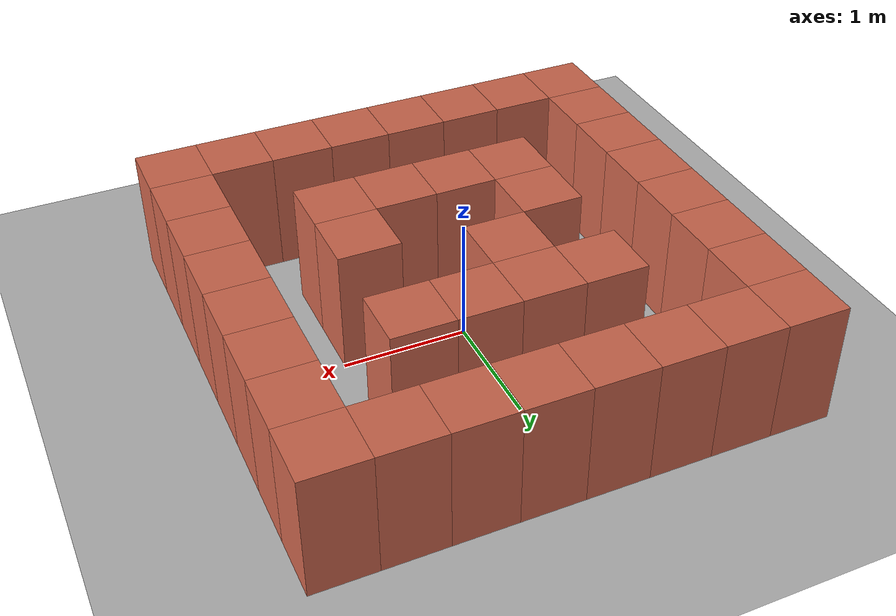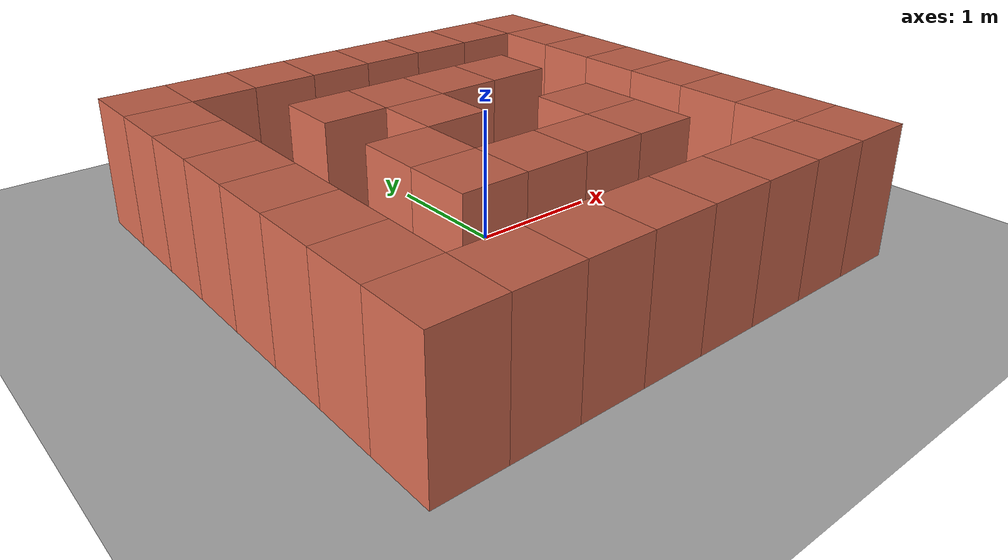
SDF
<?xml version="1.0" ?>
<sdf version="1.10">
  <world name="maze">
    <physics name="1ms" type="ignored">
      <max_step_size>0.001</max_step_size>
      <real_time_factor>1.0</real_time_factor>
    </physics>

    <plugin filename="gz-sim-physics-system" name="gz::sim::systems::Physics"/>
    <plugin filename="gz-sim-user-commands-system" name="gz::sim::systems::UserCommands"/>
    <plugin filename="gz-sim-scene-broadcaster-system" name="gz::sim::systems::SceneBroadcaster"/>
    <plugin filename="gz-sim-contact-system" name="gz::sim::systems::Contact"/>
    <plugin filename="gz-sim-sensors-system" name="gz::sim::systems::Sensors">
      <render_engine>ogre2</render_engine>
    </plugin>

    <light type="directional" name="sun">
      <cast_shadows>true</cast_shadows>
      <pose>0 0 10 0 0 0</pose>
      <diffuse>0.9 0.9 0.9 1</diffuse>
      <specular>0.2 0.2 0.2 1</specular>
      <direction>-0.5 0.1 -0.9</direction>
    </light>

    <model name="ground_plane">
      <static>true</static>
      <link name="link">
        <collision name="collision">
          <geometry><plane><normal>0 0 1</normal><size>20 20</size></plane></geometry>
        </collision>
        <visual name="visual">
          <geometry><plane><normal>0 0 1</normal><size>20 20</size></plane></geometry>
          <material><ambient>0.4 0.4 0.4 1</ambient><diffuse>0.7 0.7 0.7 1</diffuse></material>
        </visual>
      </link>
    </model>

    <model name="wall_0_0">
      <static>true</static>
      <pose>-1.750 1.750 0.500 0 0 0</pose>
      <link name="link">
        <collision name="collision">
          <geometry><box><size>0.5 0.5 1.0</size></box></geometry>
        </collision>
        <visual name="visual">
          <geometry><box><size>0.5 0.5 1.0</size></box></geometry>
          <material><ambient>0.6 0.3 0.2 1</ambient><diffuse>0.8 0.4 0.3 1</diffuse></material>
        </visual>
      </link>
    </model>
    <model name="wall_0_1">
      <static>true</static>
      <pose>-1.250 1.750 0.500 0 0 0</pose>
      <link name="link">
        <collision name="collision">
          <geometry><box><size>0.5 0.5 1.0</size></box></geometry>
        </collision>
        <visual name="visual">
          <geometry><box><size>0.5 0.5 1.0</size></box></geometry>
          <material><ambient>0.6 0.3 0.2 1</ambient><diffuse>0.8 0.4 0.3 1</diffuse></material>
        </visual>
      </link>
    </model>
    <model name="wall_0_2">
      <static>true</static>
      <pose>-0.750 1.750 0.500 0 0 0</pose>
      <link name="link">
        <collision name="collision">
          <geometry><box><size>0.5 0.5 1.0</size></box></geometry>
        </collision>
        <visual name="visual">
          <geometry><box><size>0.5 0.5 1.0</size></box></geometry>
          <material><ambient>0.6 0.3 0.2 1</ambient><diffuse>0.8 0.4 0.3 1</diffuse></material>
        </visual>
      </link>
    </model>
    <model name="wall_0_3">
      <static>true</static>
      <pose>-0.250 1.750 0.500 0 0 0</pose>
      <link name="link">
        <collision name="collision">
          <geometry><box><size>0.5 0.5 1.0</size></box></geometry>
        </collision>
        <visual name="visual">
          <geometry><box><size>0.5 0.5 1.0</size></box></geometry>
          <material><ambient>0.6 0.3 0.2 1</ambient><diffuse>0.8 0.4 0.3 1</diffuse></material>
        </visual>
      </link>
    </model>
    <model name="wall_0_4">
      <static>true</static>
      <pose>0.250 1.750 0.500 0 0 0</pose>
      <link name="link">
        <collision name="collision">
          <geometry><box><size>0.5 0.5 1.0</size></box></geometry>
        </collision>
        <visual name="visual">
          <geometry><box><size>0.5 0.5 1.0</size></box></geometry>
          <material><ambient>0.6 0.3 0.2 1</ambient><diffuse>0.8 0.4 0.3 1</diffuse></material>
        </visual>
      </link>
    </model>
    <model name="wall_0_5">
      <static>true</static>
      <pose>0.750 1.750 0.500 0 0 0</pose>
      <link name="link">
        <collision name="collision">
          <geometry><box><size>0.5 0.5 1.0</size></box></geometry>
        </collision>
        <visual name="visual">
          <geometry><box><size>0.5 0.5 1.0</size></box></geometry>
          <material><ambient>0.6 0.3 0.2 1</ambient><diffuse>0.8 0.4 0.3 1</diffuse></material>
        </visual>
      </link>
    </model>
    <model name="wall_0_6">
      <static>true</static>
      <pose>1.250 1.750 0.500 0 0 0</pose>
      <link name="link">
        <collision name="collision">
          <geometry><box><size>0.5 0.5 1.0</size></box></geometry>
        </collision>
        <visual name="visual">
          <geometry><box><size>0.5 0.5 1.0</size></box></geometry>
          <material><ambient>0.6 0.3 0.2 1</ambient><diffuse>0.8 0.4 0.3 1</diffuse></material>
        </visual>
      </link>
    </model>
    <model name="wall_0_7">
      <static>true</static>
      <pose>1.750 1.750 0.500 0 0 0</pose>
      <link name="link">
        <collision name="collision">
          <geometry><box><size>0.5 0.5 1.0</size></box></geometry>
        </collision>
        <visual name="visual">
          <geometry><box><size>0.5 0.5 1.0</size></box></geometry>
          <material><ambient>0.6 0.3 0.2 1</ambient><diffuse>0.8 0.4 0.3 1</diffuse></material>
        </visual>
      </link>
    </model>
    <model name="wall_1_0">
      <static>true</static>
      <pose>-1.750 1.250 0.500 0 0 0</pose>
      <link name="link">
        <collision name="collision">
          <geometry><box><size>0.5 0.5 1.0</size></box></geometry>
        </collision>
        <visual name="visual">
          <geometry><box><size>0.5 0.5 1.0</size></box></geometry>
          <material><ambient>0.6 0.3 0.2 1</ambient><diffuse>0.8 0.4 0.3 1</diffuse></material>
        </visual>
      </link>
    </model>
    <model name="wall_1_7">
      <static>true</static>
      <pose>1.750 1.250 0.500 0 0 0</pose>
      <link name="link">
        <collision name="collision">
          <geometry><box><size>0.5 0.5 1.0</size></box></geometry>
        </collision>
        <visual name="visual">
          <geometry><box><size>0.5 0.5 1.0</size></box></geometry>
          <material><ambient>0.6 0.3 0.2 1</ambient><diffuse>0.8 0.4 0.3 1</diffuse></material>
        </visual>
      </link>
    </model>
    <model name="wall_2_0">
      <static>true</static>
      <pose>-1.750 0.750 0.500 0 0 0</pose>
      <link name="link">
        <collision name="collision">
          <geometry><box><size>0.5 0.5 1.0</size></box></geometry>
        </collision>
        <visual name="visual">
          <geometry><box><size>0.5 0.5 1.0</size></box></geometry>
          <material><ambient>0.6 0.3 0.2 1</ambient><diffuse>0.8 0.4 0.3 1</diffuse></material>
        </visual>
      </link>
    </model>
    <model name="wall_2_2">
      <static>true</static>
      <pose>-0.750 0.750 0.500 0 0 0</pose>
      <link name="link">
        <collision name="collision">
          <geometry><box><size>0.5 0.5 1.0</size></box></geometry>
        </collision>
        <visual name="visual">
          <geometry><box><size>0.5 0.5 1.0</size></box></geometry>
          <material><ambient>0.6 0.3 0.2 1</ambient><diffuse>0.8 0.4 0.3 1</diffuse></material>
        </visual>
      </link>
    </model>
    <model name="wall_2_3">
      <static>true</static>
      <pose>-0.250 0.750 0.500 0 0 0</pose>
      <link name="link">
        <collision name="collision">
          <geometry><box><size>0.5 0.5 1.0</size></box></geometry>
        </collision>
        <visual name="visual">
          <geometry><box><size>0.5 0.5 1.0</size></box></geometry>
          <material><ambient>0.6 0.3 0.2 1</ambient><diffuse>0.8 0.4 0.3 1</diffuse></material>
        </visual>
      </link>
    </model>
    <model name="wall_2_4">
      <static>true</static>
      <pose>0.250 0.750 0.500 0 0 0</pose>
      <link name="link">
        <collision name="collision">
          <geometry><box><size>0.5 0.5 1.0</size></box></geometry>
        </collision>
        <visual name="visual">
          <geometry><box><size>0.5 0.5 1.0</size></box></geometry>
          <material><ambient>0.6 0.3 0.2 1</ambient><diffuse>0.8 0.4 0.3 1</diffuse></material>
        </visual>
      </link>
    </model>
    <model name="wall_2_5">
      <static>true</static>
      <pose>0.750 0.750 0.500 0 0 0</pose>
      <link name="link">
        <collision name="collision">
          <geometry><box><size>0.5 0.5 1.0</size></box></geometry>
        </collision>
        <visual name="visual">
          <geometry><box><size>0.5 0.5 1.0</size></box></geometry>
          <material><ambient>0.6 0.3 0.2 1</ambient><diffuse>0.8 0.4 0.3 1</diffuse></material>
        </visual>
      </link>
    </model>
    <model name="wall_2_7">
      <static>true</static>
      <pose>1.750 0.750 0.500 0 0 0</pose>
      <link name="link">
        <collision name="collision">
          <geometry><box><size>0.5 0.5 1.0</size></box></geometry>
        </collision>
        <visual name="visual">
          <geometry><box><size>0.5 0.5 1.0</size></box></geometry>
          <material><ambient>0.6 0.3 0.2 1</ambient><diffuse>0.8 0.4 0.3 1</diffuse></material>
        </visual>
      </link>
    </model>
    <model name="wall_3_0">
      <static>true</static>
      <pose>-1.750 0.250 0.500 0 0 0</pose>
      <link name="link">
        <collision name="collision">
          <geometry><box><size>0.5 0.5 1.0</size></box></geometry>
        </collision>
        <visual name="visual">
          <geometry><box><size>0.5 0.5 1.0</size></box></geometry>
          <material><ambient>0.6 0.3 0.2 1</ambient><diffuse>0.8 0.4 0.3 1</diffuse></material>
        </visual>
      </link>
    </model>
    <model name="wall_3_3">
      <static>true</static>
      <pose>-0.250 0.250 0.500 0 0 0</pose>
      <link name="link">
        <collision name="collision">
          <geometry><box><size>0.5 0.5 1.0</size></box></geometry>
        </collision>
        <visual name="visual">
          <geometry><box><size>0.5 0.5 1.0</size></box></geometry>
          <material><ambient>0.6 0.3 0.2 1</ambient><diffuse>0.8 0.4 0.3 1</diffuse></material>
        </visual>
      </link>
    </model>
    <model name="wall_3_7">
      <static>true</static>
      <pose>1.750 0.250 0.500 0 0 0</pose>
      <link name="link">
        <collision name="collision">
          <geometry><box><size>0.5 0.5 1.0</size></box></geometry>
        </collision>
        <visual name="visual">
          <geometry><box><size>0.5 0.5 1.0</size></box></geometry>
          <material><ambient>0.6 0.3 0.2 1</ambient><diffuse>0.8 0.4 0.3 1</diffuse></material>
        </visual>
      </link>
    </model>
    <model name="wall_4_0">
      <static>true</static>
      <pose>-1.750 -0.250 0.500 0 0 0</pose>
      <link name="link">
        <collision name="collision">
          <geometry><box><size>0.5 0.5 1.0</size></box></geometry>
        </collision>
        <visual name="visual">
          <geometry><box><size>0.5 0.5 1.0</size></box></geometry>
          <material><ambient>0.6 0.3 0.2 1</ambient><diffuse>0.8 0.4 0.3 1</diffuse></material>
        </visual>
      </link>
    </model>
    <model name="wall_4_2">
      <static>true</static>
      <pose>-0.750 -0.250 0.500 0 0 0</pose>
      <link name="link">
        <collision name="collision">
          <geometry><box><size>0.5 0.5 1.0</size></box></geometry>
        </collision>
        <visual name="visual">
          <geometry><box><size>0.5 0.5 1.0</size></box></geometry>
          <material><ambient>0.6 0.3 0.2 1</ambient><diffuse>0.8 0.4 0.3 1</diffuse></material>
        </visual>
      </link>
    </model>
    <model name="wall_4_5">
      <static>true</static>
      <pose>0.750 -0.250 0.500 0 0 0</pose>
      <link name="link">
        <collision name="collision">
          <geometry><box><size>0.5 0.5 1.0</size></box></geometry>
        </collision>
        <visual name="visual">
          <geometry><box><size>0.5 0.5 1.0</size></box></geometry>
          <material><ambient>0.6 0.3 0.2 1</ambient><diffuse>0.8 0.4 0.3 1</diffuse></material>
        </visual>
      </link>
    </model>
    <model name="wall_4_7">
      <static>true</static>
      <pose>1.750 -0.250 0.500 0 0 0</pose>
      <link name="link">
        <collision name="collision">
          <geometry><box><size>0.5 0.5 1.0</size></box></geometry>
        </collision>
        <visual name="visual">
          <geometry><box><size>0.5 0.5 1.0</size></box></geometry>
          <material><ambient>0.6 0.3 0.2 1</ambient><diffuse>0.8 0.4 0.3 1</diffuse></material>
        </visual>
      </link>
    </model>
    <model name="wall_5_0">
      <static>true</static>
      <pose>-1.750 -0.750 0.500 0 0 0</pose>
      <link name="link">
        <collision name="collision">
          <geometry><box><size>0.5 0.5 1.0</size></box></geometry>
        </collision>
        <visual name="visual">
          <geometry><box><size>0.5 0.5 1.0</size></box></geometry>
          <material><ambient>0.6 0.3 0.2 1</ambient><diffuse>0.8 0.4 0.3 1</diffuse></material>
        </visual>
      </link>
    </model>
    <model name="wall_5_2">
      <static>true</static>
      <pose>-0.750 -0.750 0.500 0 0 0</pose>
      <link name="link">
        <collision name="collision">
          <geometry><box><size>0.5 0.5 1.0</size></box></geometry>
        </collision>
        <visual name="visual">
          <geometry><box><size>0.5 0.5 1.0</size></box></geometry>
          <material><ambient>0.6 0.3 0.2 1</ambient><diffuse>0.8 0.4 0.3 1</diffuse></material>
        </visual>
      </link>
    </model>
    <model name="wall_5_3">
      <static>true</static>
      <pose>-0.250 -0.750 0.500 0 0 0</pose>
      <link name="link">
        <collision name="collision">
          <geometry><box><size>0.5 0.5 1.0</size></box></geometry>
        </collision>
        <visual name="visual">
          <geometry><box><size>0.5 0.5 1.0</size></box></geometry>
          <material><ambient>0.6 0.3 0.2 1</ambient><diffuse>0.8 0.4 0.3 1</diffuse></material>
        </visual>
      </link>
    </model>
    <model name="wall_5_4">
      <static>true</static>
      <pose>0.250 -0.750 0.500 0 0 0</pose>
      <link name="link">
        <collision name="collision">
          <geometry><box><size>0.5 0.5 1.0</size></box></geometry>
        </collision>
        <visual name="visual">
          <geometry><box><size>0.5 0.5 1.0</size></box></geometry>
          <material><ambient>0.6 0.3 0.2 1</ambient><diffuse>0.8 0.4 0.3 1</diffuse></material>
        </visual>
      </link>
    </model>
    <model name="wall_5_5">
      <static>true</static>
      <pose>0.750 -0.750 0.500 0 0 0</pose>
      <link name="link">
        <collision name="collision">
          <geometry><box><size>0.5 0.5 1.0</size></box></geometry>
        </collision>
        <visual name="visual">
          <geometry><box><size>0.5 0.5 1.0</size></box></geometry>
          <material><ambient>0.6 0.3 0.2 1</ambient><diffuse>0.8 0.4 0.3 1</diffuse></material>
        </visual>
      </link>
    </model>
    <model name="wall_5_7">
      <static>true</static>
      <pose>1.750 -0.750 0.500 0 0 0</pose>
      <link name="link">
        <collision name="collision">
          <geometry><box><size>0.5 0.5 1.0</size></box></geometry>
        </collision>
        <visual name="visual">
          <geometry><box><size>0.5 0.5 1.0</size></box></geometry>
          <material><ambient>0.6 0.3 0.2 1</ambient><diffuse>0.8 0.4 0.3 1</diffuse></material>
        </visual>
      </link>
    </model>
    <model name="wall_6_0">
      <static>true</static>
      <pose>-1.750 -1.250 0.500 0 0 0</pose>
      <link name="link">
        <collision name="collision">
          <geometry><box><size>0.5 0.5 1.0</size></box></geometry>
        </collision>
        <visual name="visual">
          <geometry><box><size>0.5 0.5 1.0</size></box></geometry>
          <material><ambient>0.6 0.3 0.2 1</ambient><diffuse>0.8 0.4 0.3 1</diffuse></material>
        </visual>
      </link>
    </model>
    <model name="wall_6_7">
      <static>true</static>
      <pose>1.750 -1.250 0.500 0 0 0</pose>
      <link name="link">
        <collision name="collision">
          <geometry><box><size>0.5 0.5 1.0</size></box></geometry>
        </collision>
        <visual name="visual">
          <geometry><box><size>0.5 0.5 1.0</size></box></geometry>
          <material><ambient>0.6 0.3 0.2 1</ambient><diffuse>0.8 0.4 0.3 1</diffuse></material>
        </visual>
      </link>
    </model>
    <model name="wall_7_0">
      <static>true</static>
      <pose>-1.750 -1.750 0.500 0 0 0</pose>
      <link name="link">
        <collision name="collision">
          <geometry><box><size>0.5 0.5 1.0</size></box></geometry>
        </collision>
        <visual name="visual">
          <geometry><box><size>0.5 0.5 1.0</size></box></geometry>
          <material><ambient>0.6 0.3 0.2 1</ambient><diffuse>0.8 0.4 0.3 1</diffuse></material>
        </visual>
      </link>
    </model>
    <model name="wall_7_1">
      <static>true</static>
      <pose>-1.250 -1.750 0.500 0 0 0</pose>
      <link name="link">
        <collision name="collision">
          <geometry><box><size>0.5 0.5 1.0</size></box></geometry>
        </collision>
        <visual name="visual">
          <geometry><box><size>0.5 0.5 1.0</size></box></geometry>
          <material><ambient>0.6 0.3 0.2 1</ambient><diffuse>0.8 0.4 0.3 1</diffuse></material>
        </visual>
      </link>
    </model>
    <model name="wall_7_2">
      <static>true</static>
      <pose>-0.750 -1.750 0.500 0 0 0</pose>
      <link name="link">
        <collision name="collision">
          <geometry><box><size>0.5 0.5 1.0</size></box></geometry>
        </collision>
        <visual name="visual">
          <geometry><box><size>0.5 0.5 1.0</size></box></geometry>
          <material><ambient>0.6 0.3 0.2 1</ambient><diffuse>0.8 0.4 0.3 1</diffuse></material>
        </visual>
      </link>
    </model>
    <model name="wall_7_3">
      <static>true</static>
      <pose>-0.250 -1.750 0.500 0 0 0</pose>
      <link name="link">
        <collision name="collision">
          <geometry><box><size>0.5 0.5 1.0</size></box></geometry>
        </collision>
        <visual name="visual">
          <geometry><box><size>0.5 0.5 1.0</size></box></geometry>
          <material><ambient>0.6 0.3 0.2 1</ambient><diffuse>0.8 0.4 0.3 1</diffuse></material>
        </visual>
      </link>
    </model>
    <model name="wall_7_4">
      <static>true</static>
      <pose>0.250 -1.750 0.500 0 0 0</pose>
      <link name="link">
        <collision name="collision">
          <geometry><box><size>0.5 0.5 1.0</size></box></geometry>
        </collision>
        <visual name="visual">
          <geometry><box><size>0.5 0.5 1.0</size></box></geometry>
          <material><ambient>0.6 0.3 0.2 1</ambient><diffuse>0.8 0.4 0.3 1</diffuse></material>
        </visual>
      </link>
    </model>
    <model name="wall_7_5">
      <static>true</static>
      <pose>0.750 -1.750 0.500 0 0 0</pose>
      <link name="link">
        <collision name="collision">
          <geometry><box><size>0.5 0.5 1.0</size></box></geometry>
        </collision>
        <visual name="visual">
          <geometry><box><size>0.5 0.5 1.0</size></box></geometry>
          <material><ambient>0.6 0.3 0.2 1</ambient><diffuse>0.8 0.4 0.3 1</diffuse></material>
        </visual>
      </link>
    </model>
    <model name="wall_7_6">
      <static>true</static>
      <pose>1.250 -1.750 0.500 0 0 0</pose>
      <link name="link">
        <collision name="collision">
          <geometry><box><size>0.5 0.5 1.0</size></box></geometry>
        </collision>
        <visual name="visual">
          <geometry><box><size>0.5 0.5 1.0</size></box></geometry>
          <material><ambient>0.6 0.3 0.2 1</ambient><diffuse>0.8 0.4 0.3 1</diffuse></material>
        </visual>
      </link>
    </model>
    <model name="wall_7_7">
      <static>true</static>
      <pose>1.750 -1.750 0.500 0 0 0</pose>
      <link name="link">
        <collision name="collision">
          <geometry><box><size>0.5 0.5 1.0</size></box></geometry>
        </collision>
        <visual name="visual">
          <geometry><box><size>0.5 0.5 1.0</size></box></geometry>
          <material><ambient>0.6 0.3 0.2 1</ambient><diffuse>0.8 0.4 0.3 1</diffuse></material>
        </visual>
      </link>
    </model>

    <spawn_pose>
      <!-- Spawn cell (row, col) = (1, 1) -->
      <x>-1.250</x>
      <y>1.250</y>
      <z>0.05</z>
      <yaw>0.0</yaw>
    </spawn_pose>
  </world>
</sdf>
